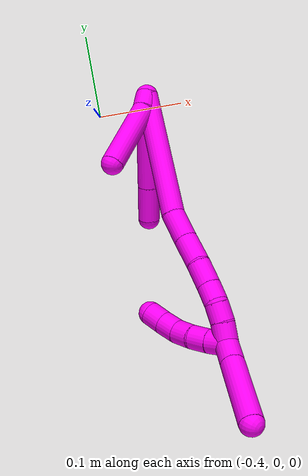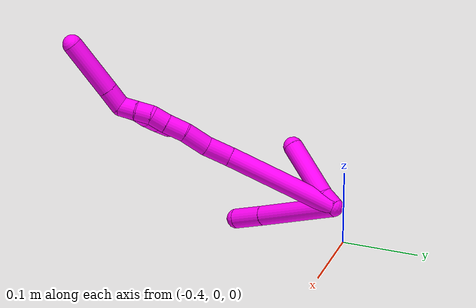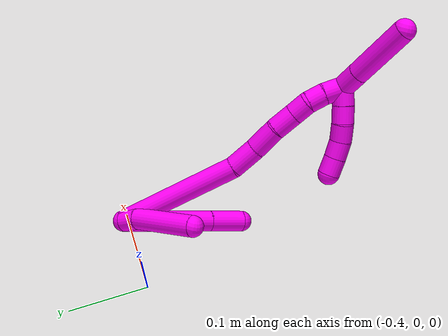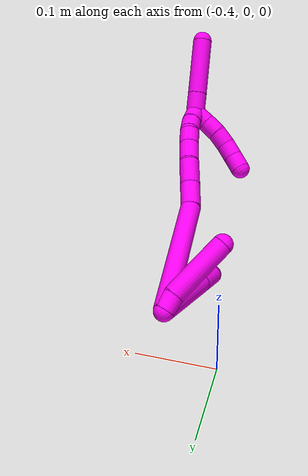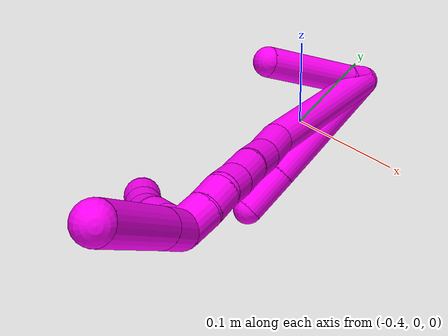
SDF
<sdf version="1.7">
 <world name="default">
  <model name="10">
   <static>0</static>
   <link name="10">
    <collision name="collision-cylinder-e_1_2_8">
     <pose>0.054281 0.000859 -0.002764 -2.84027 1.51753 -2.82405</pose>
     <geometry><cylinder><radius>0.0125</radius><length>0.108717</length></cylinder></geometry>
     <surface>
      <friction><ode><mu>1.16</mu><mu2>1.16</mu2><slip1>0</slip1><slip2>0</slip2></ode></friction>
      <contact><ode><kp>1e+06</kp><kd>1</kd><max_vel>0</max_vel><min_depth>0.001</min_depth></ode></contact>
     </surface>
    </collision>
    <visual name="visual-cylinder-e_1_2_8">
     <pose>0.054281 0.000859 -0.002764 -2.84027 1.51753 -2.82405</pose>
     <geometry><cylinder><radius>0.0125</radius><length>0.108717</length></cylinder></geometry>
     <material><ambient>1 0 0.964706 1</ambient></material>
    </visual>
    <collision name="collision-cylinder-e_2_8_6">
     <pose>0.129168 0.00223 -0.006633 -2.7081 1.51175 -2.6826</pose>
     <geometry><cylinder><radius>0.0125</radius><length>0.041283</length></cylinder></geometry>
     <surface>
      <friction><ode><mu>1.16</mu><mu2>1.16</mu2><slip1>0</slip1><slip2>0</slip2></ode></friction>
      <contact><ode><kp>1e+06</kp><kd>1</kd><max_vel>0</max_vel><min_depth>0.001</min_depth></ode></contact>
     </surface>
    </collision>
    <visual name="visual-cylinder-e_2_8_6">
     <pose>0.129168 0.00223 -0.006633 -2.7081 1.51175 -2.6826</pose>
     <geometry><cylinder><radius>0.0125</radius><length>0.041283</length></cylinder></geometry>
     <material><ambient>1 0 0.964706 1</ambient></material>
    </visual>
    <collision name="collision-cylinder-e_1_2_9">
     <pose>0.005576 0.006829 -0.00508 -2.2104 0.579956 -1.07182</pose>
     <geometry><cylinder><radius>0.0125</radius><length>0.020351</length></cylinder></geometry>
     <surface>
      <friction><ode><mu>1.16</mu><mu2>1.16</mu2><slip1>0</slip1><slip2>0</slip2></ode></friction>
      <contact><ode><kp>1e+06</kp><kd>1</kd><max_vel>0</max_vel><min_depth>0.001</min_depth></ode></contact>
     </surface>
    </collision>
    <visual name="visual-cylinder-e_1_2_9">
     <pose>0.005576 0.006829 -0.00508 -2.2104 0.579956 -1.07182</pose>
     <geometry><cylinder><radius>0.0125</radius><length>0.020351</length></cylinder></geometry>
     <material><ambient>1 0 0.964706 1</ambient></material>
    </visual>
    <collision name="collision-cylinder-e_2_9_5">
     <pose>0.031766 0.045672 -0.02183 -1.92035 0.544072 -0.758582</pose>
     <geometry><cylinder><radius>0.0125</radius><length>0.079649</length></cylinder></geometry>
     <surface>
      <friction><ode><mu>1.16</mu><mu2>1.16</mu2><slip1>0</slip1><slip2>0</slip2></ode></friction>
      <contact><ode><kp>1e+06</kp><kd>1</kd><max_vel>0</max_vel><min_depth>0.001</min_depth></ode></contact>
     </surface>
    </collision>
    <visual name="visual-cylinder-e_2_9_5">
     <pose>0.031766 0.045672 -0.02183 -1.92035 0.544072 -0.758582</pose>
     <geometry><cylinder><radius>0.0125</radius><length>0.079649</length></cylinder></geometry>
     <material><ambient>1 0 0.964706 1</ambient></material>
    </visual>
    <collision name="collision-cylinder-e_1_2_10">
     <pose>0.05077 0.021944 -0.046942 -2.70431 0.775182 -2.14473</pose>
     <geometry><cylinder><radius>0.0125</radius><length>0.145089</length></cylinder></geometry>
     <surface>
      <friction><ode><mu>1.16</mu><mu2>1.16</mu2><slip1>0</slip1><slip2>0</slip2></ode></friction>
      <contact><ode><kp>1e+06</kp><kd>1</kd><max_vel>0</max_vel><min_depth>0.001</min_depth></ode></contact>
     </surface>
    </collision>
    <visual name="visual-cylinder-e_1_2_10">
     <pose>0.05077 0.021944 -0.046942 -2.70431 0.775182 -2.14473</pose>
     <geometry><cylinder><radius>0.0125</radius><length>0.145089</length></cylinder></geometry>
     <material><ambient>1 0 0.964706 1</ambient></material>
    </visual>
    <collision name="collision-cylinder-e_2_10_11">
     <pose>0.110846 0.046846 -0.107234 -2.92355 0.597579 -2.45869</pose>
     <geometry><cylinder><radius>0.0125</radius><length>0.033081</length></cylinder></geometry>
     <surface>
      <friction><ode><mu>1.16</mu><mu2>1.16</mu2><slip1>0</slip1><slip2>0</slip2></ode></friction>
      <contact><ode><kp>1e+06</kp><kd>1</kd><max_vel>0</max_vel><min_depth>0.001</min_depth></ode></contact>
     </surface>
    </collision>
    <visual name="visual-cylinder-e_2_10_11">
     <pose>0.110846 0.046846 -0.107234 -2.92355 0.597579 -2.45869</pose>
     <geometry><cylinder><radius>0.0125</radius><length>0.033081</length></cylinder></geometry>
     <material><ambient>1 0 0.964706 1</ambient></material>
    </visual>
    <collision name="collision-cylinder-e_3_11_12">
     <pose>0.12715 0.05412 -0.134704 -2.84494 0.442614 -1.9691</pose>
     <geometry><cylinder><radius>0.0125</radius><length>0.032679</length></cylinder></geometry>
     <surface>
      <friction><ode><mu>1.16</mu><mu2>1.16</mu2><slip1>0</slip1><slip2>0</slip2></ode></friction>
      <contact><ode><kp>1e+06</kp><kd>1</kd><max_vel>0</max_vel><min_depth>0.001</min_depth></ode></contact>
     </surface>
    </collision>
    <visual name="visual-cylinder-e_3_11_12">
     <pose>0.12715 0.05412 -0.134704 -2.84494 0.442614 -1.9691</pose>
     <geometry><cylinder><radius>0.0125</radius><length>0.032679</length></cylinder></geometry>
     <material><ambient>1 0 0.964706 1</ambient></material>
    </visual>
    <collision name="collision-cylinder-e_4_12_13">
     <pose>0.141773 0.06102 -0.159402 -2.90194 0.610889 -2.41207</pose>
     <geometry><cylinder><radius>0.0125</radius><length>0.026586</length></cylinder></geometry>
     <surface>
      <friction><ode><mu>1.16</mu><mu2>1.16</mu2><slip1>0</slip1><slip2>0</slip2></ode></friction>
      <contact><ode><kp>1e+06</kp><kd>1</kd><max_vel>0</max_vel><min_depth>0.001</min_depth></ode></contact>
     </surface>
    </collision>
    <visual name="visual-cylinder-e_4_12_13">
     <pose>0.141773 0.06102 -0.159402 -2.90194 0.610889 -2.41207</pose>
     <geometry><cylinder><radius>0.0125</radius><length>0.026586</length></cylinder></geometry>
     <material><ambient>1 0 0.964706 1</ambient></material>
    </visual>
    <collision name="collision-cylinder-e_5_13_14">
     <pose>0.154737 0.066426 -0.178429 -2.81942 0.539915 -2.07963</pose>
     <geometry><cylinder><radius>0.0125</radius><length>0.020772</length></cylinder></geometry>
     <surface>
      <friction><ode><mu>1.16</mu><mu2>1.16</mu2><slip1>0</slip1><slip2>0</slip2></ode></friction>
      <contact><ode><kp>1e+06</kp><kd>1</kd><max_vel>0</max_vel><min_depth>0.001</min_depth></ode></contact>
     </surface>
    </collision>
    <visual name="visual-cylinder-e_5_13_14">
     <pose>0.154737 0.066426 -0.178429 -2.81942 0.539915 -2.07963</pose>
     <geometry><cylinder><radius>0.0125</radius><length>0.020772</length></cylinder></geometry>
     <material><ambient>1 0 0.964706 1</ambient></material>
    </visual>
    <collision name="collision-cylinder-e_6_14_15">
     <pose>0.1678 0.07072 -0.193167 -2.91138 0.874425 -2.65658</pose>
     <geometry><cylinder><radius>0.0125</radius><length>0.020135</length></cylinder></geometry>
     <surface>
      <friction><ode><mu>1.16</mu><mu2>1.16</mu2><slip1>0</slip1><slip2>0</slip2></ode></friction>
      <contact><ode><kp>1e+06</kp><kd>1</kd><max_vel>0</max_vel><min_depth>0.001</min_depth></ode></contact>
     </surface>
    </collision>
    <visual name="visual-cylinder-e_6_14_15">
     <pose>0.1678 0.07072 -0.193167 -2.91138 0.874425 -2.65658</pose>
     <geometry><cylinder><radius>0.0125</radius><length>0.020135</length></cylinder></geometry>
     <material><ambient>1 0 0.964706 1</ambient></material>
    </visual>
    <collision name="collision-cylinder-e_7_15_1">
     <pose>0.184613 0.074436 -0.204898 -2.75087 0.995978 -2.44346</pose>
     <geometry><cylinder><radius>0.0125</radius><length>0.02166</length></cylinder></geometry>
     <surface>
      <friction><ode><mu>1.16</mu><mu2>1.16</mu2><slip1>0</slip1><slip2>0</slip2></ode></friction>
      <contact><ode><kp>1e+06</kp><kd>1</kd><max_vel>0</max_vel><min_depth>0.001</min_depth></ode></contact>
     </surface>
    </collision>
    <visual name="visual-cylinder-e_7_15_1">
     <pose>0.184613 0.074436 -0.204898 -2.75087 0.995978 -2.44346</pose>
     <geometry><cylinder><radius>0.0125</radius><length>0.02166</length></cylinder></geometry>
     <material><ambient>1 0 0.964706 1</ambient></material>
    </visual>
    <collision name="collision-cylinder-e_1_1_16">
     <pose>0.196594 0.08362 -0.221326 -2.57796 0.219002 -0.725822</pose>
     <geometry><cylinder><radius>0.0125</radius><length>0.026623</length></cylinder></geometry>
     <surface>
      <friction><ode><mu>1.16</mu><mu2>1.16</mu2><slip1>0</slip1><slip2>0</slip2></ode></friction>
      <contact><ode><kp>1e+06</kp><kd>1</kd><max_vel>0</max_vel><min_depth>0.001</min_depth></ode></contact>
     </surface>
    </collision>
    <visual name="visual-cylinder-e_1_1_16">
     <pose>0.196594 0.08362 -0.221326 -2.57796 0.219002 -0.725822</pose>
     <geometry><cylinder><radius>0.0125</radius><length>0.026623</length></cylinder></geometry>
     <material><ambient>1 0 0.964706 1</ambient></material>
    </visual>
    <collision name="collision-cylinder-e_2_16_4">
     <pose>0.207669 0.109426 -0.262695 -2.58601 0.224937 -0.754226</pose>
     <geometry><cylinder><radius>0.0125</radius><length>0.073377</length></cylinder></geometry>
     <surface>
      <friction><ode><mu>1.16</mu><mu2>1.16</mu2><slip1>0</slip1><slip2>0</slip2></ode></friction>
      <contact><ode><kp>1e+06</kp><kd>1</kd><max_vel>0</max_vel><min_depth>0.001</min_depth></ode></contact>
     </surface>
    </collision>
    <visual name="visual-cylinder-e_2_16_4">
     <pose>0.207669 0.109426 -0.262695 -2.58601 0.224937 -0.754226</pose>
     <geometry><cylinder><radius>0.0125</radius><length>0.073377</length></cylinder></geometry>
     <material><ambient>1 0 0.964706 1</ambient></material>
    </visual>
    <collision name="collision-cylinder-e_1_1_17">
     <pose>0.195448 0.07965 -0.200955 -0.306568 0.175476 -0.027178</pose>
     <geometry><cylinder><radius>0.0125</radius><length>0.02</length></cylinder></geometry>
     <surface>
      <friction><ode><mu>1.16</mu><mu2>1.16</mu2><slip1>0</slip1><slip2>0</slip2></ode></friction>
      <contact><ode><kp>1e+06</kp><kd>1</kd><max_vel>0</max_vel><min_depth>0.001</min_depth></ode></contact>
     </surface>
    </collision>
    <visual name="visual-cylinder-e_1_1_17">
     <pose>0.195448 0.07965 -0.200955 -0.306568 0.175476 -0.027178</pose>
     <geometry><cylinder><radius>0.0125</radius><length>0.02</length></cylinder></geometry>
     <material><ambient>1 0 0.964706 1</ambient></material>
    </visual>
    <collision name="collision-cylinder-e_2_17_18">
     <pose>0.198255 0.085224 -0.181971 -0.264758 0.106322 -0.014171</pose>
     <geometry><cylinder><radius>0.0125</radius><length>0.02</length></cylinder></geometry>
     <surface>
      <friction><ode><mu>1.16</mu><mu2>1.16</mu2><slip1>0</slip1><slip2>0</slip2></ode></friction>
      <contact><ode><kp>1e+06</kp><kd>1</kd><max_vel>0</max_vel><min_depth>0.001</min_depth></ode></contact>
     </surface>
    </collision>
    <visual name="visual-cylinder-e_2_17_18">
     <pose>0.198255 0.085224 -0.181971 -0.264758 0.106322 -0.014171</pose>
     <geometry><cylinder><radius>0.0125</radius><length>0.02</length></cylinder></geometry>
     <material><ambient>1 0 0.964706 1</ambient></material>
    </visual>
    <collision name="collision-cylinder-e_3_18_19">
     <pose>0.20044 0.088735 -0.162479 -0.0917 0.112621 -0.005173</pose>
     <geometry><cylinder><radius>0.0125</radius><length>0.02</length></cylinder></geometry>
     <surface>
      <friction><ode><mu>1.16</mu><mu2>1.16</mu2><slip1>0</slip1><slip2>0</slip2></ode></friction>
      <contact><ode><kp>1e+06</kp><kd>1</kd><max_vel>0</max_vel><min_depth>0.001</min_depth></ode></contact>
     </surface>
    </collision>
    <visual name="visual-cylinder-e_3_18_19">
     <pose>0.20044 0.088735 -0.162479 -0.0917 0.112621 -0.005173</pose>
     <geometry><cylinder><radius>0.0125</radius><length>0.02</length></cylinder></geometry>
     <material><ambient>1 0 0.964706 1</ambient></material>
    </visual>
    <collision name="collision-cylinder-e_4_19_20">
     <pose>0.200555 0.090378 -0.142662 -0.073722 -0.100985 0.003727</pose>
     <geometry><cylinder><radius>0.0125</radius><length>0.02</length></cylinder></geometry>
     <surface>
      <friction><ode><mu>1.16</mu><mu2>1.16</mu2><slip1>0</slip1><slip2>0</slip2></ode></friction>
      <contact><ode><kp>1e+06</kp><kd>1</kd><max_vel>0</max_vel><min_depth>0.001</min_depth></ode></contact>
     </surface>
    </collision>
    <visual name="visual-cylinder-e_4_19_20">
     <pose>0.200555 0.090378 -0.142662 -0.073722 -0.100985 0.003727</pose>
     <geometry><cylinder><radius>0.0125</radius><length>0.02</length></cylinder></geometry>
     <material><ambient>1 0 0.964706 1</ambient></material>
    </visual>
    <collision name="collision-cylinder-e_5_20_3">
     <pose>0.197797 0.091953 -0.12293 -0.085621 -0.175912 0.007555</pose>
     <geometry><cylinder><radius>0.0125</radius><length>0.02</length></cylinder></geometry>
     <surface>
      <friction><ode><mu>1.16</mu><mu2>1.16</mu2><slip1>0</slip1><slip2>0</slip2></ode></friction>
      <contact><ode><kp>1e+06</kp><kd>1</kd><max_vel>0</max_vel><min_depth>0.001</min_depth></ode></contact>
     </surface>
    </collision>
    <visual name="visual-cylinder-e_5_20_3">
     <pose>0.197797 0.091953 -0.12293 -0.085621 -0.175912 0.007555</pose>
     <geometry><cylinder><radius>0.0125</radius><length>0.02</length></cylinder></geometry>
     <material><ambient>1 0 0.964706 1</ambient></material>
    </visual>
    <collision name="collision-sphere-3">
     <pose>0.196047 0.092795 -0.113121 0 -0 0</pose>
     <geometry><sphere><radius>0.0125</radius></sphere></geometry>
     <surface>
      <friction><ode><mu>1.16</mu><mu2>1.16</mu2><slip1>0</slip1><slip2>0</slip2></ode></friction>
      <contact><ode><kp>1e+06</kp><kd>1</kd><max_vel>0</max_vel><min_depth>0.001</min_depth></ode></contact>
     </surface>
    </collision>
    <visual name="visual-sphere-3">
     <pose>0.196047 0.092795 -0.113121 0 -0 0</pose>
     <geometry><sphere><radius>0.0125</radius></sphere></geometry>
     <material><ambient>1 0 0.964706 1</ambient></material>
    </visual>
    <collision name="collision-sphere-20">
     <pose>0.199547 0.091111 -0.13274 0 -0 0</pose>
     <geometry><sphere><radius>0.0125</radius></sphere></geometry>
     <surface>
      <friction><ode><mu>1.16</mu><mu2>1.16</mu2><slip1>0</slip1><slip2>0</slip2></ode></friction>
      <contact><ode><kp>1e+06</kp><kd>1</kd><max_vel>0</max_vel><min_depth>0.001</min_depth></ode></contact>
     </surface>
    </collision>
    <visual name="visual-sphere-20">
     <pose>0.199547 0.091111 -0.13274 0 -0 0</pose>
     <geometry><sphere><radius>0.0125</radius></sphere></geometry>
     <material><ambient>1 0 0.964706 1</ambient></material>
    </visual>
    <collision name="collision-sphere-19">
     <pose>0.201564 0.089645 -0.152584 0 -0 0</pose>
     <geometry><sphere><radius>0.0125</radius></sphere></geometry>
     <surface>
      <friction><ode><mu>1.16</mu><mu2>1.16</mu2><slip1>0</slip1><slip2>0</slip2></ode></friction>
      <contact><ode><kp>1e+06</kp><kd>1</kd><max_vel>0</max_vel><min_depth>0.001</min_depth></ode></contact>
     </surface>
    </collision>
    <visual name="visual-sphere-19">
     <pose>0.201564 0.089645 -0.152584 0 -0 0</pose>
     <geometry><sphere><radius>0.0125</radius></sphere></geometry>
     <material><ambient>1 0 0.964706 1</ambient></material>
    </visual>
    <collision name="collision-sphere-10">
     <pose>0.10154 0.043888 -0.093884 0 -0 0</pose>
     <geometry><sphere><radius>0.0125</radius></sphere></geometry>
     <surface>
      <friction><ode><mu>1.16</mu><mu2>1.16</mu2><slip1>0</slip1><slip2>0</slip2></ode></friction>
      <contact><ode><kp>1e+06</kp><kd>1</kd><max_vel>0</max_vel><min_depth>0.001</min_depth></ode></contact>
     </surface>
    </collision>
    <visual name="visual-sphere-10">
     <pose>0.10154 0.043888 -0.093884 0 -0 0</pose>
     <geometry><sphere><radius>0.0125</radius></sphere></geometry>
     <material><ambient>1 0 0.964706 1</ambient></material>
    </visual>
    <collision name="collision-sphere-5">
     <pose>0.05238 0.077686 -0.0335 0 -0 0</pose>
     <geometry><sphere><radius>0.0125</radius></sphere></geometry>
     <surface>
      <friction><ode><mu>1.16</mu><mu2>1.16</mu2><slip1>0</slip1><slip2>0</slip2></ode></friction>
      <contact><ode><kp>1e+06</kp><kd>1</kd><max_vel>0</max_vel><min_depth>0.001</min_depth></ode></contact>
     </surface>
    </collision>
    <visual name="visual-sphere-5">
     <pose>0.05238 0.077686 -0.0335 0 -0 0</pose>
     <geometry><sphere><radius>0.0125</radius></sphere></geometry>
     <material><ambient>1 0 0.964706 1</ambient></material>
    </visual>
    <collision name="collision-sphere-6">
     <pose>0.149774 0.002741 -0.007738 0 -0 0</pose>
     <geometry><sphere><radius>0.0125</radius></sphere></geometry>
     <surface>
      <friction><ode><mu>1.16</mu><mu2>1.16</mu2><slip1>0</slip1><slip2>0</slip2></ode></friction>
      <contact><ode><kp>1e+06</kp><kd>1</kd><max_vel>0</max_vel><min_depth>0.001</min_depth></ode></contact>
     </surface>
    </collision>
    <visual name="visual-sphere-6">
     <pose>0.149774 0.002741 -0.007738 0 -0 0</pose>
     <geometry><sphere><radius>0.0125</radius></sphere></geometry>
     <material><ambient>1 0 0.964706 1</ambient></material>
    </visual>
    <collision name="collision-sphere-9">
     <pose>0.011152 0.013658 -0.010161 0 -0 0</pose>
     <geometry><sphere><radius>0.0125</radius></sphere></geometry>
     <surface>
      <friction><ode><mu>1.16</mu><mu2>1.16</mu2><slip1>0</slip1><slip2>0</slip2></ode></friction>
      <contact><ode><kp>1e+06</kp><kd>1</kd><max_vel>0</max_vel><min_depth>0.001</min_depth></ode></contact>
     </surface>
    </collision>
    <visual name="visual-sphere-9">
     <pose>0.011152 0.013658 -0.010161 0 -0 0</pose>
     <geometry><sphere><radius>0.0125</radius></sphere></geometry>
     <material><ambient>1 0 0.964706 1</ambient></material>
    </visual>
    <collision name="collision-sphere-2">
     <geometry><sphere><radius>0.0125</radius></sphere></geometry>
     <surface>
      <friction><ode><mu>1.16</mu><mu2>1.16</mu2><slip1>0</slip1><slip2>0</slip2></ode></friction>
      <contact><ode><kp>1e+06</kp><kd>1</kd><max_vel>0</max_vel><min_depth>0.001</min_depth></ode></contact>
     </surface>
    </collision>
    <visual name="visual-sphere-2">
     <geometry><sphere><radius>0.0125</radius></sphere></geometry>
     <material><ambient>1 0 0.964706 1</ambient></material>
    </visual>
    <collision name="collision-sphere-8">
     <pose>0.108563 0.001718 -0.005527 0 -0 0</pose>
     <geometry><sphere><radius>0.0125</radius></sphere></geometry>
     <surface>
      <friction><ode><mu>1.16</mu><mu2>1.16</mu2><slip1>0</slip1><slip2>0</slip2></ode></friction>
      <contact><ode><kp>1e+06</kp><kd>1</kd><max_vel>0</max_vel><min_depth>0.001</min_depth></ode></contact>
     </surface>
    </collision>
    <visual name="visual-sphere-8">
     <pose>0.108563 0.001718 -0.005527 0 -0 0</pose>
     <geometry><sphere><radius>0.0125</radius></sphere></geometry>
     <material><ambient>1 0 0.964706 1</ambient></material>
    </visual>
    <collision name="collision-sphere-11">
     <pose>0.120152 0.049804 -0.120584 0 -0 0</pose>
     <geometry><sphere><radius>0.0125</radius></sphere></geometry>
     <surface>
      <friction><ode><mu>1.16</mu><mu2>1.16</mu2><slip1>0</slip1><slip2>0</slip2></ode></friction>
      <contact><ode><kp>1e+06</kp><kd>1</kd><max_vel>0</max_vel><min_depth>0.001</min_depth></ode></contact>
     </surface>
    </collision>
    <visual name="visual-sphere-11">
     <pose>0.120152 0.049804 -0.120584 0 -0 0</pose>
     <geometry><sphere><radius>0.0125</radius></sphere></geometry>
     <material><ambient>1 0 0.964706 1</ambient></material>
    </visual>
    <collision name="collision-sphere-12">
     <pose>0.134149 0.058436 -0.148824 0 -0 0</pose>
     <geometry><sphere><radius>0.0125</radius></sphere></geometry>
     <surface>
      <friction><ode><mu>1.16</mu><mu2>1.16</mu2><slip1>0</slip1><slip2>0</slip2></ode></friction>
      <contact><ode><kp>1e+06</kp><kd>1</kd><max_vel>0</max_vel><min_depth>0.001</min_depth></ode></contact>
     </surface>
    </collision>
    <visual name="visual-sphere-12">
     <pose>0.134149 0.058436 -0.148824 0 -0 0</pose>
     <geometry><sphere><radius>0.0125</radius></sphere></geometry>
     <material><ambient>1 0 0.964706 1</ambient></material>
    </visual>
    <collision name="collision-sphere-13">
     <pose>0.149398 0.063605 -0.169979 0 -0 0</pose>
     <geometry><sphere><radius>0.0125</radius></sphere></geometry>
     <surface>
      <friction><ode><mu>1.16</mu><mu2>1.16</mu2><slip1>0</slip1><slip2>0</slip2></ode></friction>
      <contact><ode><kp>1e+06</kp><kd>1</kd><max_vel>0</max_vel><min_depth>0.001</min_depth></ode></contact>
     </surface>
    </collision>
    <visual name="visual-sphere-13">
     <pose>0.149398 0.063605 -0.169979 0 -0 0</pose>
     <geometry><sphere><radius>0.0125</radius></sphere></geometry>
     <material><ambient>1 0 0.964706 1</ambient></material>
    </visual>
    <collision name="collision-sphere-14">
     <pose>0.160076 0.069246 -0.18688 0 -0 0</pose>
     <geometry><sphere><radius>0.0125</radius></sphere></geometry>
     <surface>
      <friction><ode><mu>1.16</mu><mu2>1.16</mu2><slip1>0</slip1><slip2>0</slip2></ode></friction>
      <contact><ode><kp>1e+06</kp><kd>1</kd><max_vel>0</max_vel><min_depth>0.001</min_depth></ode></contact>
     </surface>
    </collision>
    <visual name="visual-sphere-14">
     <pose>0.160076 0.069246 -0.18688 0 -0 0</pose>
     <geometry><sphere><radius>0.0125</radius></sphere></geometry>
     <material><ambient>1 0 0.964706 1</ambient></material>
    </visual>
    <collision name="collision-sphere-15">
     <pose>0.175523 0.072193 -0.199454 0 -0 0</pose>
     <geometry><sphere><radius>0.0125</radius></sphere></geometry>
     <surface>
      <friction><ode><mu>1.16</mu><mu2>1.16</mu2><slip1>0</slip1><slip2>0</slip2></ode></friction>
      <contact><ode><kp>1e+06</kp><kd>1</kd><max_vel>0</max_vel><min_depth>0.001</min_depth></ode></contact>
     </surface>
    </collision>
    <visual name="visual-sphere-15">
     <pose>0.175523 0.072193 -0.199454 0 -0 0</pose>
     <geometry><sphere><radius>0.0125</radius></sphere></geometry>
     <material><ambient>1 0 0.964706 1</ambient></material>
    </visual>
    <collision name="collision-sphere-1">
     <pose>0.193702 0.076678 -0.210343 0 -0 0</pose>
     <geometry><sphere><radius>0.0125</radius></sphere></geometry>
     <surface>
      <friction><ode><mu>1.16</mu><mu2>1.16</mu2><slip1>0</slip1><slip2>0</slip2></ode></friction>
      <contact><ode><kp>1e+06</kp><kd>1</kd><max_vel>0</max_vel><min_depth>0.001</min_depth></ode></contact>
     </surface>
    </collision>
    <visual name="visual-sphere-1">
     <pose>0.193702 0.076678 -0.210343 0 -0 0</pose>
     <geometry><sphere><radius>0.0125</radius></sphere></geometry>
     <material><ambient>1 0 0.964706 1</ambient></material>
    </visual>
    <collision name="collision-sphere-18">
     <pose>0.199316 0.087826 -0.172374 0 -0 0</pose>
     <geometry><sphere><radius>0.0125</radius></sphere></geometry>
     <surface>
      <friction><ode><mu>1.16</mu><mu2>1.16</mu2><slip1>0</slip1><slip2>0</slip2></ode></friction>
      <contact><ode><kp>1e+06</kp><kd>1</kd><max_vel>0</max_vel><min_depth>0.001</min_depth></ode></contact>
     </surface>
    </collision>
    <visual name="visual-sphere-18">
     <pose>0.199316 0.087826 -0.172374 0 -0 0</pose>
     <geometry><sphere><radius>0.0125</radius></sphere></geometry>
     <material><ambient>1 0 0.964706 1</ambient></material>
    </visual>
    <collision name="collision-sphere-16">
     <pose>0.199486 0.090562 -0.23231 0 -0 0</pose>
     <geometry><sphere><radius>0.0125</radius></sphere></geometry>
     <surface>
      <friction><ode><mu>1.16</mu><mu2>1.16</mu2><slip1>0</slip1><slip2>0</slip2></ode></friction>
      <contact><ode><kp>1e+06</kp><kd>1</kd><max_vel>0</max_vel><min_depth>0.001</min_depth></ode></contact>
     </surface>
    </collision>
    <visual name="visual-sphere-16">
     <pose>0.199486 0.090562 -0.23231 0 -0 0</pose>
     <geometry><sphere><radius>0.0125</radius></sphere></geometry>
     <material><ambient>1 0 0.964706 1</ambient></material>
    </visual>
    <collision name="collision-sphere-4">
     <pose>0.215852 0.128289 -0.29308 0 -0 0</pose>
     <geometry><sphere><radius>0.0125</radius></sphere></geometry>
     <surface>
      <friction><ode><mu>1.16</mu><mu2>1.16</mu2><slip1>0</slip1><slip2>0</slip2></ode></friction>
      <contact><ode><kp>1e+06</kp><kd>1</kd><max_vel>0</max_vel><min_depth>0.001</min_depth></ode></contact>
     </surface>
    </collision>
    <visual name="visual-sphere-4">
     <pose>0.215852 0.128289 -0.29308 0 -0 0</pose>
     <geometry><sphere><radius>0.0125</radius></sphere></geometry>
     <material><ambient>1 0 0.964706 1</ambient></material>
    </visual>
    <collision name="collision-sphere-17">
     <pose>0.197193 0.082622 -0.191568 0 -0 0</pose>
     <geometry><sphere><radius>0.0125</radius></sphere></geometry>
     <surface>
      <friction><ode><mu>1.16</mu><mu2>1.16</mu2><slip1>0</slip1><slip2>0</slip2></ode></friction>
      <contact><ode><kp>1e+06</kp><kd>1</kd><max_vel>0</max_vel><min_depth>0.001</min_depth></ode></contact>
     </surface>
    </collision>
    <visual name="visual-sphere-17">
     <pose>0.197193 0.082622 -0.191568 0 -0 0</pose>
     <geometry><sphere><radius>0.0125</radius></sphere></geometry>
     <material><ambient>1 0 0.964706 1</ambient></material>
    </visual>
    <inertial>
     <pose>0.111664 0.047302 -0.099782 0 -0 0</pose>
     <mass>0.75</mass>
     <inertia>
      <ixx>-0.00024</ixx>
      <ixy>0</ixy>
      <ixz>0</ixz>
      <iyy>0.00011</iyy>
      <iyz>0</iyz>
      <izz>-0.000504</izz>
     </inertia>
    </inertial>
   </link>
   <pose>-0.339635 0.006243 0.083218 2.40524 0.415095 -1.75613</pose>
  </model>
 </world>
</sdf>
